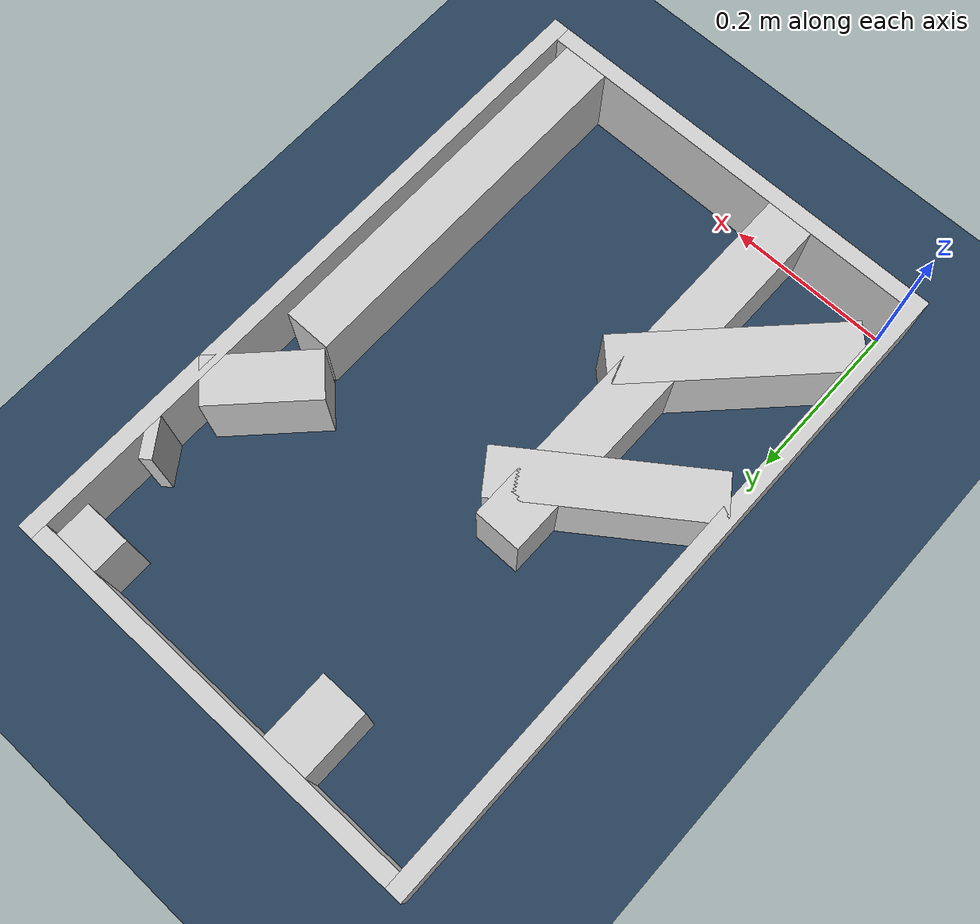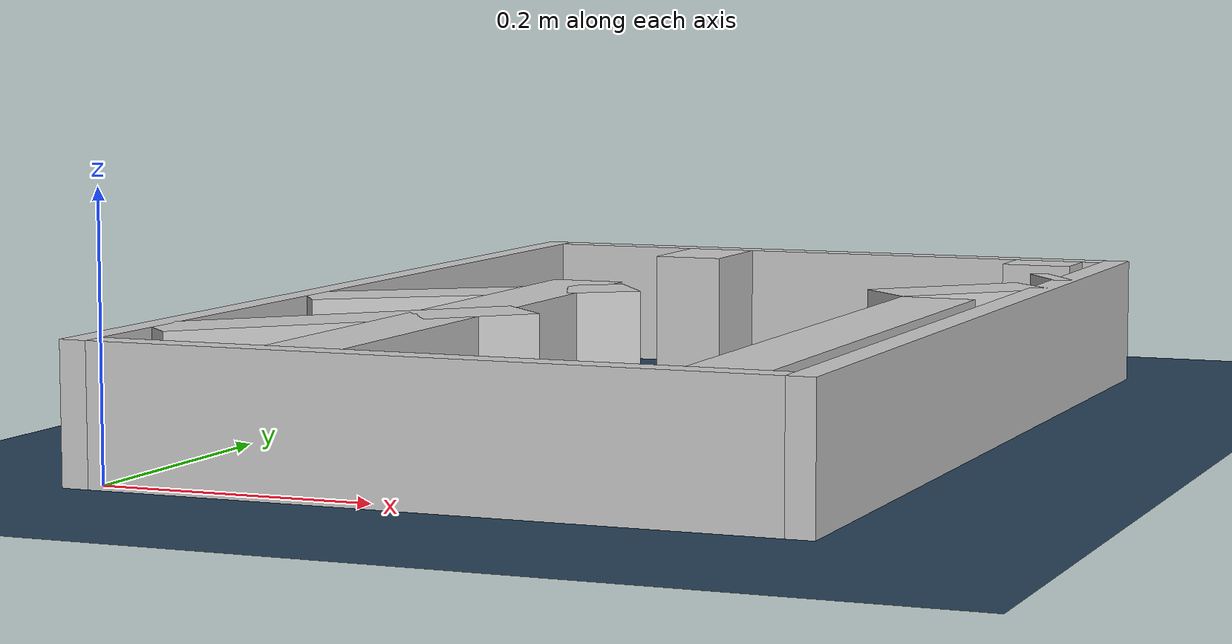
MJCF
<?xml version="1.0" ?>
<mujoco model="generated_real_template">
  <compiler angle="degree"/>
  <option timestep="0.002" integrator="implicitfast" iterations="100" cone="elliptic"/>
  <default>
    <geom density="1"/>
  </default>
  <asset>
    <texture builtin="gradient" height="3072" rgb1="0.3 0.5 0.7" rgb2="0 0 0" type="skybox" width="512"/>
    <texture builtin="checker" height="300" mark="edge" markrgb="0.8 0.8 0.8" name="groundplane" rgb1="0.2 0.3 0.4" rgb2="0.1 0.2 0.3" type="2d" width="300"/>
    <material name="groundplane" reflectance="0.2" texrepeat="5 5" texture="groundplane" texuniform="true"/>
  </asset>
  <worldbody>
    <light dir="0 0 -1" directional="true" pos="0 0 1.5"/>
    <geom name="floor" type="plane" condim="4" friction="0.5 0.005 0.001" material="groundplane" size="0 0 0.05"/>
    <body name="walls">
      <geom name="wall_boundary_left" type="box" condim="4" friction="1.0 0.005 0.0001" rgba="0.8 0.8 0.8 1" pos="-0.010000 0.387500 0.050000" euler="0 0 0.000000" size="0.010000 0.407500 0.050000"/>
      <geom name="wall_boundary_right" type="box" condim="4" friction="1.0 0.005 0.0001" rgba="0.8 0.8 0.8 1" pos="0.500000 0.387500 0.050000" euler="0 0 0.000000" size="0.010000 0.407500 0.050000"/>
      <geom name="wall_boundary_bottom" type="box" condim="4" friction="1.0 0.005 0.0001" rgba="0.8 0.8 0.8 1" pos="0.245000 -0.010000 0.050000" euler="0 0 0.000000" size="0.245000 0.010000 0.050000"/>
      <geom name="wall_boundary_top" type="box" condim="4" friction="1.0 0.005 0.0001" rgba="0.8 0.8 0.8 1" pos="0.245000 0.785000 0.050000" euler="0 0 0.000000" size="0.245000 0.010000 0.050000"/>
      <geom name="wall_inner_1_1" type="box" condim="4" friction="1.0 0.005 0.0001" rgba="0.8 0.8 0.8 1" pos="0.096401 0.162836 0.050000" euler="0 0 45.636051" size="0.137332 0.028500 0.050000"/>
      <geom name="wall_inner_1_2" type="box" condim="4" friction="1.0 0.005 0.0001" rgba="0.8 0.8 0.8 1" pos="0.443683 0.517916 0.050000" euler="0 0 45.636051" size="0.065703 0.028500 0.050000"/>
      <geom name="wall_inner_2_1" type="box" condim="4" friction="1.0 0.005 0.0001" rgba="0.8 0.8 0.8 1" pos="0.151747 0.237492 0.050000" euler="0 0 90.000000" size="0.237492 0.028500 0.050000"/>
      <geom name="wall_inner_2_2" type="box" condim="4" friction="1.0 0.005 0.0001" rgba="0.8 0.8 0.8 1" pos="0.151747 0.733703 0.050000" euler="0 0 90.000000" size="0.041297 0.028500 0.050000"/>
      <geom name="wall_inner_3_1" type="box" condim="4" friction="1.0 0.005 0.0001" rgba="0.8 0.8 0.8 1" pos="0.446455 0.224448 0.050000" euler="0 0 90.000000" size="0.224448 0.028500 0.050000"/>
      <geom name="wall_inner_3_2" type="box" condim="4" friction="1.0 0.005 0.0001" rgba="0.8 0.8 0.8 1" pos="0.446455 0.753356 0.050000" euler="0 0 90.000000" size="0.021644 0.028500 0.050000"/>
      <geom name="wall_inner_4_1" type="box" condim="4" friction="1.0 0.005 0.0001" rgba="0.8 0.8 0.8 1" pos="0.102007 0.363228 0.050000" euler="0 0 35.724657" size="0.125651 0.028500 0.050000"/>
      <geom name="wall_inner_4_2" type="box" condim="4" friction="1.0 0.005 0.0001" rgba="0.8 0.8 0.8 1" pos="0.484217 0.638124 0.050000" euler="0 0 35.724657" size="0.007123 0.028500 0.050000"/>
    </body>
  </worldbody>
</mujoco>
